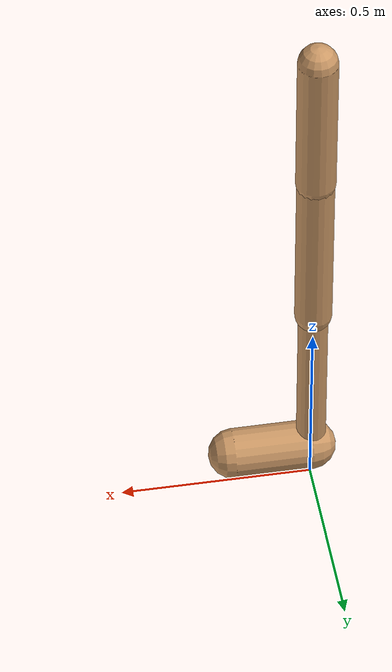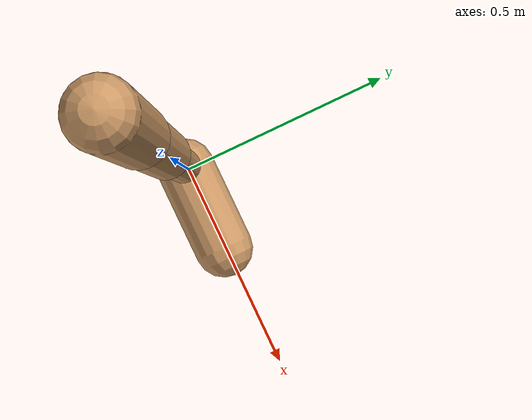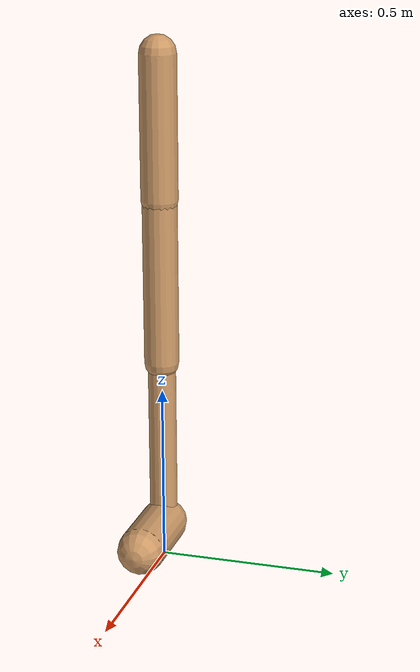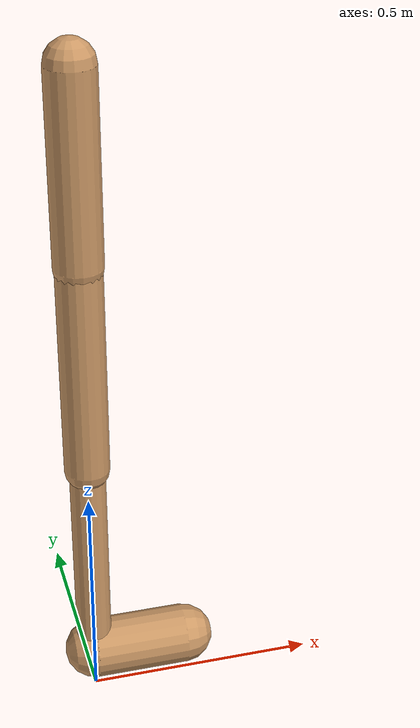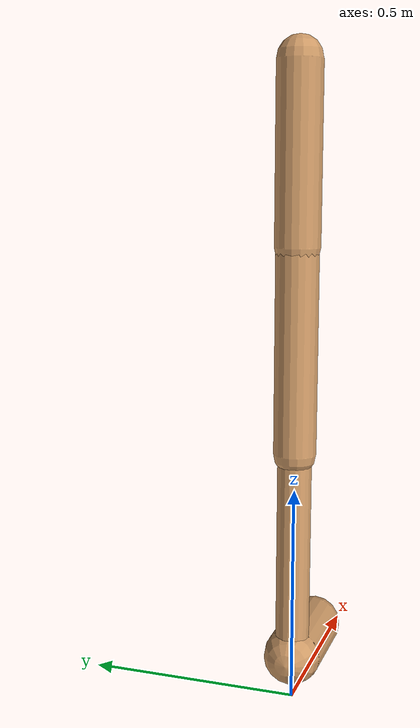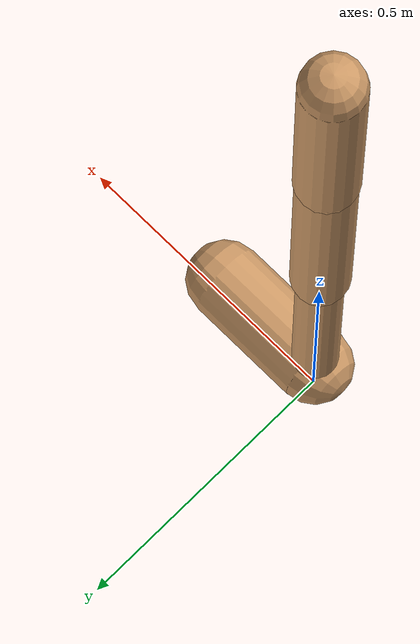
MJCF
<mujoco model="walker2d">
  <compiler angle="degree" coordinate="global" inertiafromgeom="true" />
  <default>
    <joint armature="0.01" damping=".1" limited="true" />
    <geom conaffinity="0" condim="3" contype="1" density="1000" friction="0.8 .1 .1" rgba="0.8 0.6 .4 1" />
  </default>
  <option integrator="RK4" timestep="0.002" />
  <worldbody>

    <body name="torso" pos="0 0 0.02940838028803584">
      <joint armature="0" axis="1 0 0" damping="0" limited="false" name="ignorex" pos="0 0 0" stiffness="0" type="slide" />
      <joint armature="0" axis="0 0 1" damping="0" limited="false" name="ignorez" pos="0 0 0" ref="1.25" stiffness="0" type="slide" />
      <joint armature="0" axis="0 1 0" damping="0" limited="false" name="ignorey" pos="0 0 0" stiffness="0" type="hinge" />
      <geom fromto="0 0 1.45 0 0 1.05" name="torso_geom" size="0.051299681583662306" type="capsule" />
      <body name="thigh">
        <joint axis="0 -1 0" name="thigh_joint" pos="0 0 1.05" range="-150 0" type="hinge" />
        <geom fromto="0.0 0.0 1.05 0.0 0.0 0.586069714600404" name="thigh_geom" size="0.04846223702063537" type="capsule" />
        <body name="leg" pos="0.0 0.0 -0.013930285399595954">
          <joint axis="0 -1 0" name="leg_joint" pos="0 0 0.6" range="-150 0" type="hinge" />
          <geom fromto="0.0 0.0 0.6 0.0 0.0 0.08452190511156009" name="leg_geom" size="0.03876978961650829" type="capsule" />
          <body name="foot" pos="0.0 0.0 -0.015478094888439917">
            <joint axis="0 -1 0" name="foot_joint" pos="0 0 0.1" range="-45 45" type="hinge" />
            <geom fromto="-0.0 0.0 0.10000000000000002 0.20518299237260107 0.0 0.10000000000000002" name="foot_geom" size="0.06587584286582104" type="capsule" />
          </body>
        </body>
      </body>

      <body name="thigh_left">
        <joint axis="0 -1 0" name="thigh_left_joint" pos="0 0 1.05" range="-150 0" type="hinge" />
        <geom fromto="0.0 0.0 1.05 0.0 0.0 0.586069714600404" name="thigh_left_geom" rgba=".7 .3 .6 1" size="0.04846223702063537" type="capsule" />
        <body name="leg_left" pos="0.0 0.0 -0.013930285399595954">
          <joint axis="0 -1 0" name="leg_left_joint" pos="0 0 0.6" range="-150 0" type="hinge" />
          <geom fromto="0.0 0.0 0.6 0.0 0.0 0.08452190511156009" name="leg_left_geom" rgba=".7 .3 .6 1" size="0.03876978961650829" type="capsule" />
          <body name="foot_left" pos="0.0 0.0 -0.015478094888439917">
            <joint axis="0 -1 0" name="foot_left_joint" pos="0 0 0.1" range="-45 45" type="hinge" />
            <geom fromto="-0.0 0.0 0.10000000000000002 0.20518299237260107 0.0 0.10000000000000002" name="foot_left_geom" rgba=".7 .3 .6 1" size="0.06587584286582104" type="capsule" />
          </body>
        </body>
      </body>
    </body>
  </worldbody>
  <actuator>

    <motor ctrllimited="true" ctrlrange="-1.0 1.0" gear="100" joint="thigh_joint" />
    <motor ctrllimited="true" ctrlrange="-1.0 1.0" gear="100" joint="leg_joint" />
    <motor ctrllimited="true" ctrlrange="-1.0 1.0" gear="100" joint="foot_joint" />
    <motor ctrllimited="true" ctrlrange="-1.0 1.0" gear="100" joint="thigh_left_joint" />
    <motor ctrllimited="true" ctrlrange="-1.0 1.0" gear="100" joint="leg_left_joint" />
    <motor ctrllimited="true" ctrlrange="-1.0 1.0" gear="100" joint="foot_left_joint" />

  </actuator>
</mujoco>
